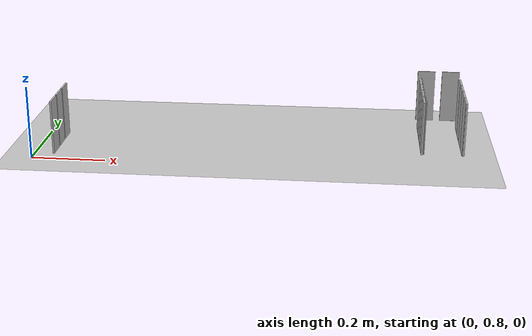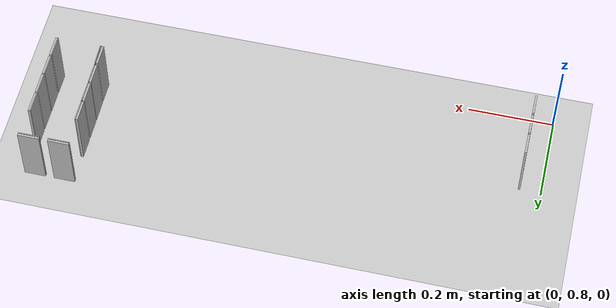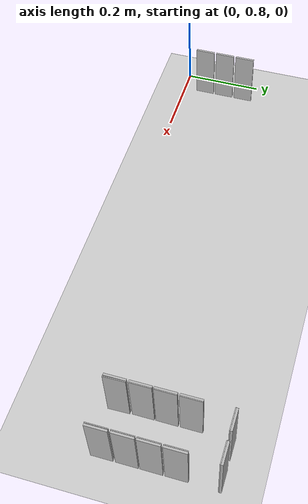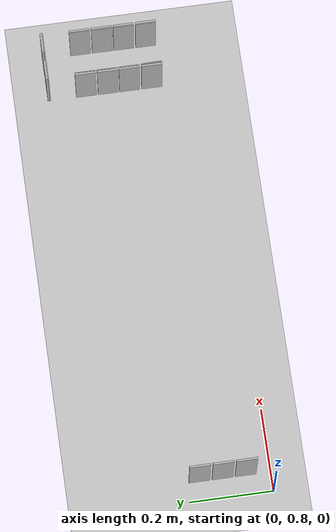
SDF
<sdf version="1.7">
 <world name="default">
  <model name="ground_plane">
   <static>1</static>
   <link name="link">
    <collision name="collision">
     <geometry><plane><normal>0 0 1</normal><size>100 100</size></plane></geometry>
     <surface><friction><ode><mu>100</mu><mu2>50</mu2></ode></friction></surface>
    </collision>
    <visual name="visual">
     <cast_shadows>0</cast_shadows>
     <geometry><plane><normal>0 0 1</normal><size>100 100</size></plane></geometry>
     <material>
      <script><uri>file://media/materials/scripts/gazebo.material</uri><name>Gazebo/Grey</name></script>
     </material>
    </visual>
   </link>
  </model>
  <model name="cm1">
   <static>1</static>
   <pose>1.14 1.2 0.075 0 -0 0</pose>
   <link name="cm1">
    <collision name="collision"><geometry><box><size>0.05 0.005 0.15</size></box></geometry></collision>
    <visual name="visual">
     <geometry><box><size>0.05 0.005 0.15</size></box></geometry>
     <material>
      <script>
       <uri>model://cm1/materials/scripts/cm1.material</uri>
       <uri>model://cm1/materials/textures/cm1.png</uri>
       <name>cm1</name>
      </script>
     </material>
    </visual>
   </link>
  </model>
  <model name="ncm1">
   <static>1</static>
   <pose>1.07 1.2 0.075 0 -0 0</pose>
   <link name="ncm1">
    <collision name="collision"><geometry><box><size>0.05 0.005 0.15</size></box></geometry></collision>
    <visual name="visual">
     <geometry><box><size>0.05 0.005 0.15</size></box></geometry>
     <material>
      <script>
       <uri>model://ncm1/materials/scripts/ncm1.material</uri>
       <uri>model://ncm1/materials/textures/ncm1.png</uri>
       <name>ncm1</name>
      </script>
     </material>
    </visual>
   </link>
  </model>
  <model name="cm2">
   <static>1</static>
   <pose>1.16 1 0.075 0 -0 1.57</pose>
   <link name="cm2">
    <collision name="collision"><geometry><box><size>0.05 0.005 0.15</size></box></geometry></collision>
    <visual name="visual">
     <geometry><box><size>0.05 0.005 0.15</size></box></geometry>
     <material>
      <script>
       <uri>model://cm2/materials/scripts/cm2.material</uri>
       <uri>model://cm2/materials/textures/cm2.png</uri>
       <name>cm2</name>
      </script>
     </material>
    </visual>
   </link>
  </model>
  <model name="cm3">
   <static>1</static>
   <pose>1.16 1.053 0.075 0 -0 1.57</pose>
   <link name="cm3">
    <collision name="collision"><geometry><box><size>0.05 0.005 0.15</size></box></geometry></collision>
    <visual name="visual">
     <geometry><box><size>0.05 0.005 0.15</size></box></geometry>
     <material>
      <script>
       <uri>model://cm3/materials/scripts/cm3.material</uri>
       <uri>model://cm3/materials/textures/cm3.png</uri>
       <name>cm3</name>
      </script>
     </material>
    </visual>
   </link>
  </model>
  <model name="cm5">
   <static>1</static>
   <pose>1.16 1.107 0.075 0 -0 1.57</pose>
   <link name="cm5">
    <collision name="collision"><geometry><box><size>0.05 0.005 0.15</size></box></geometry></collision>
    <visual name="visual">
     <geometry><box><size>0.05 0.005 0.15</size></box></geometry>
     <material>
      <script>
       <uri>model://cm5/materials/scripts/cm5.material</uri>
       <uri>model://cm5/materials/textures/cm5.png</uri>
       <name>cm5</name>
      </script>
     </material>
    </visual>
   </link>
  </model>
  <model name="cm4">
   <static>1</static>
   <pose>1.16 0.945 0.075 0 -0 1.57</pose>
   <link name="cm4">
    <collision name="collision"><geometry><box><size>0.05 0.005 0.15</size></box></geometry></collision>
    <visual name="visual">
     <geometry><box><size>0.05 0.005 0.15</size></box></geometry>
     <material>
      <script>
       <uri>model://cm4/materials/scripts/cm4.material</uri>
       <uri>model://cm4/materials/textures/cm4.png</uri>
       <name>cm4</name>
      </script>
     </material>
    </visual>
   </link>
  </model>
  <model name="thin_plate">
   <static>0</static>
   <link name="plate_link">
    <pose>0 0 0.075 0 -0 0</pose>
    <inertial>
     <mass>0.03</mass>
     <inertia>
      <ixx>0.00039375</ixx>
      <iyy>0.0003375</iyy>
      <izz>6.375e-05</izz>
      <ixy>0</ixy>
      <ixz>0</ixz>
      <iyz>0</iyz>
     </inertia>
    </inertial>
    <collision name="plate_collision"><geometry><box><size>0.002 0.05 0.15</size></box></geometry></collision>
    <visual name="plate_visual"><geometry><box><size>0.002 0.05 0.15</size></box></geometry></visual>
   </link>
   <pose>1.156 0.945006 0.000994 4e-06 4.3e-05 -0.001304</pose>
  </model>
  <model name="thin_plate_0">
   <static>0</static>
   <link name="plate_link">
    <pose>0 0 0.075 0 -0 0</pose>
    <inertial>
     <mass>0.03</mass>
     <inertia>
      <ixx>0.00039375</ixx>
      <iyy>0.0003375</iyy>
      <izz>6.375e-05</izz>
      <ixy>0</ixy>
      <ixz>0</ixz>
      <iyz>0</iyz>
     </inertia>
    </inertial>
    <collision name="plate_collision"><geometry><box><size>0.002 0.05 0.15</size></box></geometry></collision>
    <visual name="plate_visual"><geometry><box><size>0.002 0.05 0.15</size></box></geometry></visual>
   </link>
   <pose>1.15636 0.999616 0.000996 2e-06 4.3e-05 -0.000945</pose>
  </model>
  <model name="thin_plate_1">
   <static>0</static>
   <link name="plate_link">
    <pose>0 0 0.075 0 -0 0</pose>
    <inertial>
     <mass>0.03</mass>
     <inertia>
      <ixx>0.00039375</ixx>
      <iyy>0.0003375</iyy>
      <izz>6.375e-05</izz>
      <ixy>0</ixy>
      <ixz>0</ixz>
      <iyz>0</iyz>
     </inertia>
    </inertial>
    <collision name="plate_collision"><geometry><box><size>0.002 0.05 0.15</size></box></geometry></collision>
    <visual name="plate_visual"><geometry><box><size>0.002 0.05 0.15</size></box></geometry></visual>
   </link>
   <pose>1.15649 1.053 0.000994 4e-06 4.3e-05 -0.001009</pose>
  </model>
  <model name="thin_plate_2">
   <static>0</static>
   <link name="plate_link">
    <pose>0 0 0.075 0 -0 0</pose>
    <inertial>
     <mass>0.03</mass>
     <inertia>
      <ixx>0.00039375</ixx>
      <iyy>0.0003375</iyy>
      <izz>6.375e-05</izz>
      <ixy>0</ixy>
      <ixz>0</ixz>
      <iyz>0</iyz>
     </inertia>
    </inertial>
    <collision name="plate_collision"><geometry><box><size>0.002 0.05 0.15</size></box></geometry></collision>
    <visual name="plate_visual"><geometry><box><size>0.002 0.05 0.15</size></box></geometry></visual>
   </link>
   <pose>1.15649 1.10715 0.000998 1e-06 4.4e-05 -0.000965</pose>
  </model>
  <model name="thin_plate_3">
   <static>0</static>
   <link name="plate_link">
    <pose>0 0 0.075 0 -0 0</pose>
    <inertial>
     <mass>0.03</mass>
     <inertia>
      <ixx>0.00039375</ixx>
      <iyy>0.0003375</iyy>
      <izz>6.375e-05</izz>
      <ixy>0</ixy>
      <ixz>0</ixz>
      <iyz>0</iyz>
     </inertia>
    </inertial>
    <collision name="plate_collision"><geometry><box><size>0.002 0.05 0.15</size></box></geometry></collision>
    <visual name="plate_visual"><geometry><box><size>0.002 0.05 0.15</size></box></geometry></visual>
   </link>
   <pose>1.13992 1.19649 0.000998 1e-06 4.4e-05 1.57065</pose>
  </model>
  <model name="thin_plate_4">
   <static>0</static>
   <link name="plate_link">
    <pose>0 0 0.075 0 -0 0</pose>
    <inertial>
     <mass>0.03</mass>
     <inertia>
      <ixx>0.00039375</ixx>
      <iyy>0.0003375</iyy>
      <izz>6.375e-05</izz>
      <ixy>0</ixy>
      <ixz>0</ixz>
      <iyz>0</iyz>
     </inertia>
    </inertial>
    <collision name="plate_collision"><geometry><box><size>0.002 0.05 0.15</size></box></geometry></collision>
    <visual name="plate_visual"><geometry><box><size>0.002 0.05 0.15</size></box></geometry></visual>
   </link>
   <pose>1.07 1.19649 0.000995 3e-06 4.3e-05 1.57062</pose>
  </model>
  <model name="cm6">
   <static>1</static>
   <pose>1.048 0.945 0.075 0 -0 1.57</pose>
   <link name="cm6">
    <collision name="collision"><geometry><box><size>0.05 0.005 0.15</size></box></geometry></collision>
    <visual name="visual">
     <geometry><box><size>0.05 0.005 0.15</size></box></geometry>
     <material>
      <script>
       <uri>model://cm6/materials/scripts/cm6.material</uri>
       <uri>model://cm6/materials/textures/cm6.png</uri>
       <name>cm6</name>
      </script>
     </material>
    </visual>
   </link>
  </model>
  <model name="cm7">
   <static>1</static>
   <pose>1.048 1 0.075 0 -0 1.57</pose>
   <link name="cm7">
    <collision name="collision"><geometry><box><size>0.05 0.005 0.15</size></box></geometry></collision>
    <visual name="visual">
     <geometry><box><size>0.05 0.005 0.15</size></box></geometry>
     <material>
      <script>
       <uri>model://cm7/materials/scripts/cm7.material</uri>
       <uri>model://cm7/materials/textures/cm7.png</uri>
       <name>cm7</name>
      </script>
     </material>
    </visual>
   </link>
  </model>
  <model name="cm8">
   <static>1</static>
   <pose>1.048 1.053 0.075 0 -0 1.57</pose>
   <link name="cm8">
    <collision name="collision"><geometry><box><size>0.05 0.005 0.15</size></box></geometry></collision>
    <visual name="visual">
     <geometry><box><size>0.05 0.005 0.15</size></box></geometry>
     <material>
      <script>
       <uri>model://cm8/materials/scripts/cm8.material</uri>
       <uri>model://cm8/materials/textures/cm8.png</uri>
       <name>cm8</name>
      </script>
     </material>
    </visual>
   </link>
  </model>
  <model name="cm9">
   <static>1</static>
   <pose>1.048 1.107 0.075 0 -0 1.57</pose>
   <link name="cm9">
    <collision name="collision"><geometry><box><size>0.05 0.005 0.15</size></box></geometry></collision>
    <visual name="visual">
     <geometry><box><size>0.05 0.005 0.15</size></box></geometry>
     <material>
      <script>
       <uri>model://cm9/materials/scripts/cm9.material</uri>
       <uri>model://cm9/materials/textures/cm9.png</uri>
       <name>cm9</name>
      </script>
     </material>
    </visual>
   </link>
  </model>
  <model name="thin_plate_5">
   <static>0</static>
   <link name="plate_link">
    <pose>0 0 0.075 0 -0 0</pose>
    <inertial>
     <mass>0.03</mass>
     <inertia>
      <ixx>0.00039375</ixx>
      <iyy>0.0003375</iyy>
      <izz>6.375e-05</izz>
      <ixy>0</ixy>
      <ixz>0</ixz>
      <iyz>0</iyz>
     </inertia>
    </inertial>
    <collision name="plate_collision"><geometry><box><size>0.002 0.05 0.15</size></box></geometry></collision>
    <visual name="plate_visual"><geometry><box><size>0.002 0.05 0.15</size></box></geometry></visual>
   </link>
   <pose>1.05315 0.945014 0.000997 1e-06 4.3e-05 0.017886</pose>
  </model>
  <model name="thin_plate_6">
   <static>0</static>
   <link name="plate_link">
    <pose>0 0 0.075 0 -0 0</pose>
    <inertial>
     <mass>0.03</mass>
     <inertia>
      <ixx>0.00039375</ixx>
      <iyy>0.0003375</iyy>
      <izz>6.375e-05</izz>
      <ixy>0</ixy>
      <ixz>0</ixz>
      <iyz>0</iyz>
     </inertia>
    </inertial>
    <collision name="plate_collision"><geometry><box><size>0.002 0.05 0.15</size></box></geometry></collision>
    <visual name="plate_visual"><geometry><box><size>0.002 0.05 0.15</size></box></geometry></visual>
   </link>
   <pose>1.05168 0.999999 0.000997 1e-06 4.3e-05 -0.002167</pose>
  </model>
  <model name="thin_plate_7">
   <static>0</static>
   <link name="plate_link">
    <pose>0 0 0.075 0 -0 0</pose>
    <inertial>
     <mass>0.03</mass>
     <inertia>
      <ixx>0.00039375</ixx>
      <iyy>0.0003375</iyy>
      <izz>6.375e-05</izz>
      <ixy>0</ixy>
      <ixz>0</ixz>
      <iyz>0</iyz>
     </inertia>
    </inertial>
    <collision name="plate_collision"><geometry><box><size>0.002 0.05 0.15</size></box></geometry></collision>
    <visual name="plate_visual"><geometry><box><size>0.002 0.05 0.15</size></box></geometry></visual>
   </link>
   <pose>1.05165 1.053 0.000994 4e-06 4.3e-05 -0.006531</pose>
  </model>
  <model name="thin_plate_8">
   <static>0</static>
   <link name="plate_link">
    <pose>0 0 0.075 0 -0 0</pose>
    <inertial>
     <mass>0.03</mass>
     <inertia>
      <ixx>0.00039375</ixx>
      <iyy>0.0003375</iyy>
      <izz>6.375e-05</izz>
      <ixy>0</ixy>
      <ixz>0</ixz>
      <iyz>0</iyz>
     </inertia>
    </inertial>
    <collision name="plate_collision"><geometry><box><size>0.002 0.05 0.15</size></box></geometry></collision>
    <visual name="plate_visual"><geometry><box><size>0.002 0.05 0.15</size></box></geometry></visual>
   </link>
   <pose>1.05157 1.107 0.000997 1e-06 4.3e-05 -0.003431</pose>
  </model>
  <model name="cm11">
   <static>1</static>
   <pose>0.05 0.86 0.075 0 -0 1.57</pose>
   <link name="cm11">
    <collision name="collision"><geometry><box><size>0.05 0.005 0.15</size></box></geometry></collision>
    <visual name="visual">
     <geometry><box><size>0.05 0.005 0.15</size></box></geometry>
     <material>
      <script>
       <uri>model://cm11/materials/scripts/cm11.material</uri>
       <uri>model://cm11/materials/textures/cm11.png</uri>
       <name>cm11</name>
      </script>
     </material>
    </visual>
   </link>
  </model>
  <model name="cm12">
   <static>1</static>
   <pose>0.05 0.915 0.075 0 -0 1.577</pose>
   <link name="cm12">
    <collision name="collision"><geometry><box><size>0.05 0.005 0.15</size></box></geometry></collision>
    <visual name="visual">
     <geometry><box><size>0.05 0.005 0.15</size></box></geometry>
     <material>
      <script>
       <uri>model://cm12/materials/scripts/cm12.material</uri>
       <uri>model://cm12/materials/textures/cm12.png</uri>
       <name>cm12</name>
      </script>
     </material>
    </visual>
   </link>
  </model>
  <model name="cm13">
   <static>1</static>
   <pose>0.05 0.97 0.075 0 -0 1.57</pose>
   <link name="cm13">
    <collision name="collision"><geometry><box><size>0.05 0.005 0.15</size></box></geometry></collision>
    <visual name="visual">
     <geometry><box><size>0.05 0.005 0.15</size></box></geometry>
     <material>
      <script>
       <uri>model://cm13/materials/scripts/cm13.material</uri>
       <uri>model://cm13/materials/textures/cm13.png</uri>
       <name>cm13</name>
      </script>
     </material>
    </visual>
   </link>
  </model>
 </world>
</sdf>
